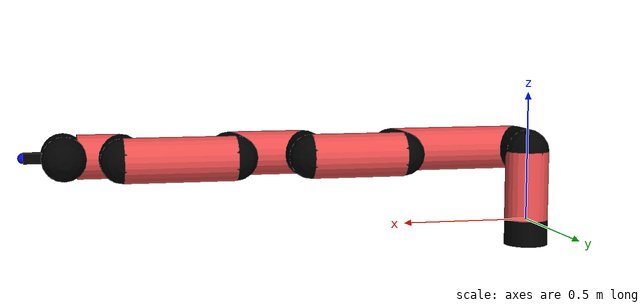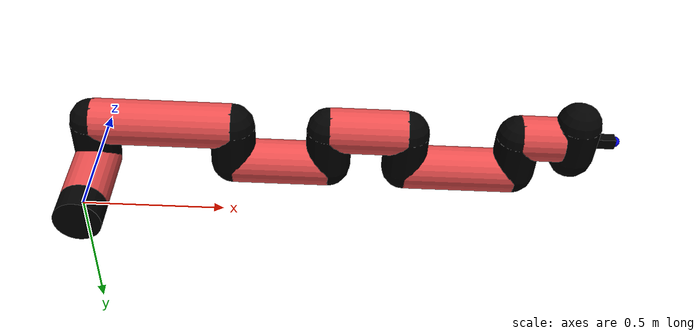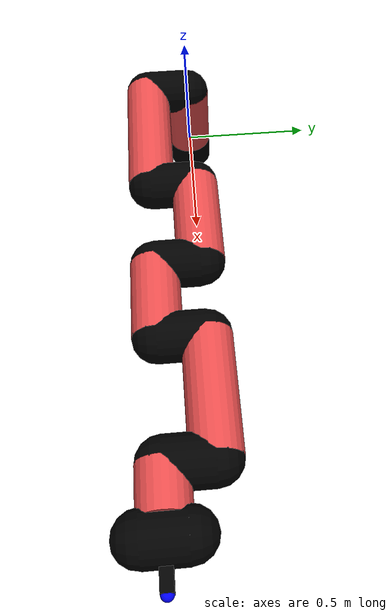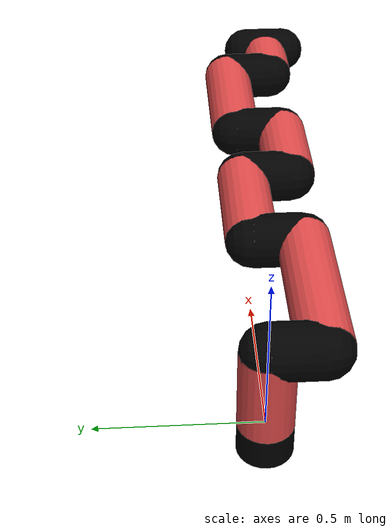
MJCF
<mujoco model="manipulator">
		<compiler angle="degree" coordinate="local" inertiafromgeom="auto" meshdir="meshes/"/>
		<option gravity="0 0 0" integrator="RK4" iterations="30" timestep="0.01"/>

		<default>
		<joint armature="1" limited="true" stiffness="10" damping="15" frictionloss="5.0"/>
		<geom conaffinity="1" condim="3" contype="1" friction=".5 .1 .1" margin="0.002"/>
		<motor ctrllimited="true"/>
		<position ctrllimited="true"/>
		</default>

		<asset>
		<texture builtin="gradient" height="100" rgb1="1.0 1.0 1.0" rgb2="1.0 1.0 1.0" type="skybox" width="100"/>
		<texture builtin="flat" height="32" name="arm_tex" rgb1="0.9 0.3 0.3" type="2d" width="32"/>
		<texture builtin="flat" height="32" name="gripper_tex" rgb1="0.0 0.0 0.0" type="cube" width="32"/>

		<material name="arm_mat" shininess="0.1" specular="0.1" texture="arm_tex"/>
		<material name="gripper_mat" shininess="1" specular="1" texture="gripper_tex"/>
		</asset>

		<worldbody>
		<light cutoff="45" diffuse=".8 .8 .8" dir="0 0.16 -1" directional="false" name="light" pos="0 -2.0 8.0" specular="0.3 0.3 0.3"/>

		<body name="base_link" pos="0 0 -0.1">
		<geom fromto="0 0 0 0 0 0.1" material="arm_mat" name="base_link" rgba="0.0 0.0 0.0 1" size="0.085" type="cylinder"/>
		</body>

		<body name="l1" pos="0 0 0">
<geom fromto="0 0 0 0 0 0.27" material="arm_mat" name="l1" rgba="0.9 0.3 0.3 1" size="0.085" type="cylinder"/>
<geom fromto="0 0 0.27 0 -0.16 0.27" material="arm_mat" name="l1_ex" rgba="0.0 0.0 0.0 1" size="0.085" type="capsule"/>
<joint axis="0 0 1" name="j1" pos="0 0 0" range="-90 90" damping="33.37" frictionloss="7.34"/>

<body name="l2" pos="0 -0.16 0.27">
<geom fromto="0 0 0 0.51 0 0" material="arm_mat" name="l2" rgba="0.9 0.3 0.3 1" size="0.085" type="cylinder"/>
<geom fromto="0.51 0 0 0.51 0.16 0" material="arm_mat" name="l2_ex" rgba="0.0 0.0 0.0 1" size="0.085" type="capsule"/>
<joint axis="0.0 1.0 0.0" name="j2" pos="0 0 0" range="-90 60" damping="30.03" frictionloss="11.49"/>

<body name="l3" pos="0.51 0.16 0">
<geom fromto="0 0 0 0.36 0 0" material="arm_mat" name="l3" rgba="0.9 0.3 0.3 1" size="0.085" type="cylinder"/>
<geom fromto="0.36 0 0 0.36 -0.16 0" material="arm_mat" name="l3_ex" rgba="0.0 0.0 0.0 1" size="0.085" type="capsule"/>
<joint axis="0.0 1.0 0.0" name="j3" pos="0 0 0" range="-30 60" damping="36.94" frictionloss="7.38"/>

<body name="l4" pos="0.36 -0.16 0">
<geom fromto="0 0 0 0.29 0 0" material="arm_mat" name="l4" rgba="0.9 0.3 0.3 1" size="0.085" type="cylinder"/>
<geom fromto="0.29 0 0 0.29 0.16 0" material="arm_mat" name="l4_ex" rgba="0.0 0.0 0.0 1" size="0.085" type="capsule"/>
<joint axis="0.0 1.0 0.0" name="j4" pos="0 0 0" range="-30 60" damping="21.75" frictionloss="9.12"/>

<body name="l5" pos="0.29 0.16 0">
<geom fromto="0 0 0 0.42 0 0" material="arm_mat" name="l5" rgba="0.9 0.3 0.3 1" size="0.085" type="cylinder"/>
<geom fromto="0.42 0 0 0.42 -0.16 0" material="arm_mat" name="l5_ex" rgba="0.0 0.0 0.0 1" size="0.085" type="capsule"/>
<joint axis="0.0 1.0 0.0" name="j5" pos="0 0 0" range="-30 60" damping="42.53" frictionloss="7.75"/>

<body name="l6" pos="0.42 -0.16 0">
<geom fromto="0 0 0 0.16 0 0" material="arm_mat" name="l6" rgba="0.9 0.3 0.3 1" size="0.085" type="cylinder"/>
<joint axis="0.0 1.0 0.0" name="j6" pos="0 0 0" range="-30 60" damping="17.15" frictionloss="10.12"/>

<body name="gripper" pos="0.16 0 0">
<geom fromto="0.05 -0.07 0 0.05 0.07 0" material="gripper_mat" name="gripper" rgba="0.0 0.0 0.0 1" size="0.085" type="capsule"/><joint axis="1 0 0" name="j7" pos="0 0 0" range="-90 90" damping="15" frictionloss="5.0"/><body name="finger" pos="0.1 0 0">
<geom fromto="0 0.0 0 0.1 0.0 0" material="gripper_mat" name="finger" rgba="0.0 0.0 0.0 1" size="0.020 0.06 0.06" type="box"/>
</body>
<site name="current" pos="0.2 0. 0.0" rgba="0. 0. 1.0 1" size="0.02" type="sphere"/>
</body>
</body>
</body>
</body>
</body>
</body>
</body>
</worldbody>
<actuator>
<motor ctrllimited="true" ctrlrange="-1.0 1.0" joint="j1" gear="40.6"/>
<motor ctrllimited="true" ctrlrange="-1.0 1.0" joint="j2" gear="75.07"/>
<motor ctrllimited="true" ctrlrange="-1.0 1.0" joint="j3" gear="79.61"/>
<motor ctrllimited="true" ctrlrange="-1.0 1.0" joint="j4" gear="84.83"/>
<motor ctrllimited="true" ctrlrange="-1.0 1.0" joint="j5" gear="91.71"/>
<motor ctrllimited="true" ctrlrange="-1.0 1.0" joint="j6" gear="110.19"/>
<motor ctrllimited="true" ctrlrange="-1.0 1.0" joint="j7" gear="80"/>
</actuator>
</mujoco>
